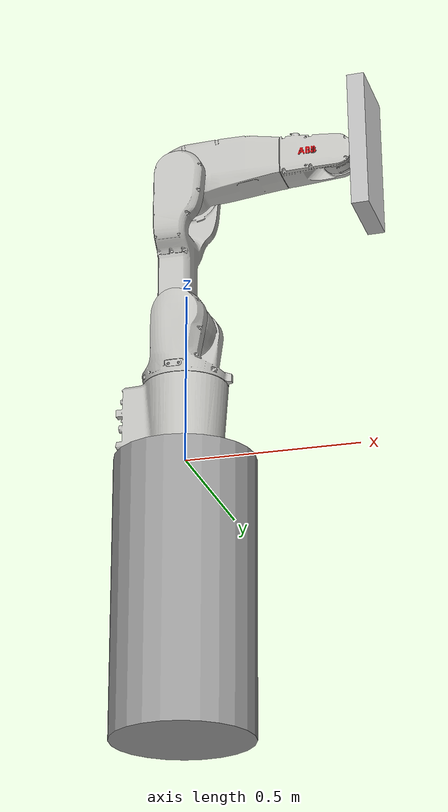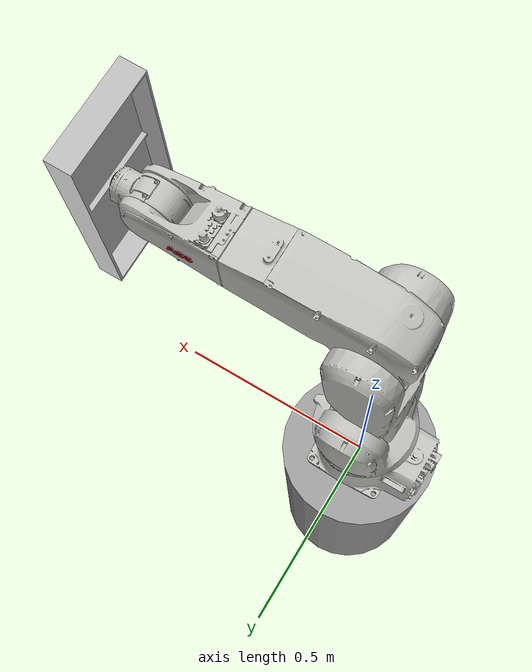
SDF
<?xml version='1.0'?>
<sdf version='1.6'>
  <model name='abb'>
    <link name='base_link'>
      <pose frame=''>0 0 0 0 -0 0</pose>
      <inertial>
        <pose frame=''>-0.028986 0.000596 0.11273 0 -0 0</pose>
        <mass>13.7742</mass>
        <inertia>
          <ixx>0.101998</ixx>
          <ixy>0.000495482</ixy>
          <ixz>0.000311158</ixz>
          <iyy>0.13969</iyy>
          <iyz>-0.000245375</iyz>
          <izz>0.130433</izz>
        </inertia>
      </inertial>
      <gravity>0</gravity>
      <velocity_decay/>
      <self_collide>0</self_collide>
      <enable_wind>0</enable_wind>
      <kinematic>0</kinematic>
      <visual name='base_link_fixed_joint_lump__visual_visual'>
        <pose frame=''>0 0 0 0 -0 0</pose>
        <geometry>
          <mesh>
            <scale>1 1 1</scale>
            <uri>model://abb/meshes/visual/base_link.dae</uri>
          </mesh>
        </geometry>
        <transparency>0</transparency>
        <cast_shadows>1</cast_shadows>
        <material>
          <emissive>0 0 0 1</emissive>
        </material>
      </visual>
    </link>
    <link name='link_0'>
      <inertial>
        <mass>1</mass>
        <inertia>
          <ixx>0.145833</ixx>
          <ixy>0</ixy>
          <ixz>0</ixz>
          <iyy>0.145833</iyy>
          <iyz>0</iyz>
          <izz>0.125</izz>
        </inertia>
        <pose frame=''>0 0 0 0 -0 0</pose>
      </inertial>
      <pose frame=''>-0 0 -0.4 0 -0 0</pose>
      <gravity>1</gravity>
      <self_collide>0</self_collide>
      <kinematic>0</kinematic>
      <enable_wind>0</enable_wind>
      <visual name='visual'>
        <pose frame=''>0 0 0 0 -0 0</pose>
        <geometry>
          <cylinder>
            <radius>0.2</radius>
            <length>0.8</length>
          </cylinder>
        </geometry>
        <material>
          <lighting>1</lighting>
          <script>
            <uri>file://media/materials/scripts/gazebo.material</uri>
            <name>Gazebo/Grey</name>
          </script>
          <shader type='vertex'>
            <normal_map>__default__</normal_map>
          </shader>
          <ambient>0.3 0.3 0.3 1</ambient>
          <diffuse>0.7 0.7 0.7 1</diffuse>
          <specular>0.01 0.01 0.01 1</specular>
          <emissive>0 0 0 1</emissive>
        </material>
        <transparency>0</transparency>
        <cast_shadows>1</cast_shadows>
      </visual>
    </link>
    <link name='link_1'>
      <pose frame=''>0 -0 0.3991 0 -0 0</pose>
      <inertial>
        <pose frame=''>0.000877 -0.000631 -0.062883 0 -0 0</pose>
        <mass>11.8419</mass>
        <inertia>
          <ixx>0.11194</ixx>
          <ixy>-4.54988e-05</ixy>
          <ixz>0.000280961</ixz>
          <iyy>0.0915159</iyy>
          <iyz>-0.000109905</iyz>
          <izz>0.0876456</izz>
        </inertia>
      </inertial>
      <gravity>0</gravity>
      <velocity_decay/>
      <self_collide>0</self_collide>
      <enable_wind>0</enable_wind>
      <kinematic>0</kinematic>
      <visual name='link_1_fixed_joint_lump__visual_visual'>
        <pose frame=''>0 0 0 0 -0 0</pose>
        <geometry>
          <mesh>
            <scale>1 1 1</scale>
            <uri>model://abb/meshes/visual/link_1.dae</uri>
          </mesh>
        </geometry>
        <transparency>0</transparency>
        <cast_shadows>1</cast_shadows>
      </visual>
    </link>
    <link name='link_2'>
      <pose frame=''>0 -0 0.3991 0 -0 0</pose>
      <inertial>
        <pose frame=''>-0.000928 -0.000497 0.250051 0 -0 0</pose>
        <mass>17.5394</mass>
        <inertia>
          <ixx>0.493558</ixx>
          <ixy>1.32136e-05</ixy>
          <ixz>0.000209024</ixz>
          <iyy>0.462939</iyy>
          <iyz>-0.00179901</iyz>
          <izz>0.0894214</izz>
        </inertia>
      </inertial>
      <gravity>0</gravity>
      <velocity_decay/>
      <self_collide>0</self_collide>
      <enable_wind>0</enable_wind>
      <kinematic>0</kinematic>
      <visual name='link_2_fixed_joint_lump__visual_visual'>
        <pose frame=''>0 0 0 0 -0 0</pose>
        <geometry>
          <mesh>
            <scale>1 1 1</scale>
            <uri>model://abb/meshes/visual/link_2.dae</uri>
          </mesh>
        </geometry>
        <transparency>0</transparency>
        <cast_shadows>1</cast_shadows>
      </visual>
    </link>
    <link name='link_3'>
      <pose frame=''>0 -0 0.8471 0 -0 0</pose>
      <inertial>
        <pose frame=''>0.099588 0.001143 0.032333 0 -0 0</pose>
        <mass>7.46365</mass>
        <inertia>
          <ixx>0.0252424</ixx>
          <ixy>0.000142737</ixy>
          <ixz>-0.00565542</ixz>
          <iyy>0.0906438</iyy>
          <iyz>0.000142213</iyz>
          <izz>0.0825079</izz>
        </inertia>
      </inertial>
      <gravity>0</gravity>
      <velocity_decay/>
      <self_collide>0</self_collide>
      <enable_wind>0</enable_wind>
      <kinematic>0</kinematic>
      <visual name='link_3_fixed_joint_lump__visual_visual'>
        <pose frame=''>0 0 0 0 -0 0</pose>
        <geometry>
          <mesh>
            <scale>1 1 1</scale>
            <uri>model://abb/meshes/visual/link_3.dae</uri>
          </mesh>
        </geometry>
        <transparency>0</transparency>
        <cast_shadows>1</cast_shadows>
      </visual>
    </link>
    <link name='link_4'>
      <pose frame=''>0 -0 0.8891 0 -0 0</pose>
      <inertial>
        <pose frame=''>0.381678 0.001261 0.005168 0 -0 0</pose>
        <mass>2.74436</mass>
        <inertia>
          <ixx>0.00573099</ixx>
          <ixy>-0.000131119</ixy>
          <ixz>0.000380232</ixz>
          <iyy>0.0118352</iyy>
          <iyz>-2.26565e-05</iyz>
          <izz>0.0114428</izz>
        </inertia>
      </inertial>
      <gravity>0</gravity>
      <velocity_decay/>
      <self_collide>0</self_collide>
      <enable_wind>0</enable_wind>
      <kinematic>0</kinematic>
      <visual name='link_4_fixed_joint_lump__visual_visual'>
        <pose frame=''>0 0 0 0 -0 0</pose>
        <geometry>
          <mesh>
            <scale>1 1 1</scale>
            <uri>model://abb/meshes/visual/link_4.dae</uri>
          </mesh>
        </geometry>
        <transparency>0</transparency>
        <cast_shadows>1</cast_shadows>
      </visual>
    </link>
    <link name='link_5'>
      <pose frame=''>0.451 -0 0.8891 0 -0 0</pose>
      <inertial>
        <pose frame=''>0.011197 -0.001056 0.000109 0 -0 0</pose>
        <mass>0.62953</mass>
        <inertia>
          <ixx>0.000502815</ixx>
          <ixy>-1.03173e-05</ixy>
          <ixz>-8.74347e-08</ixz>
          <iyy>0.00108856</iyy>
          <iyz>2.07657e-07</iyz>
          <izz>0.000918873</izz>
        </inertia>
      </inertial>
      <gravity>0</gravity>
      <velocity_decay/>
      <self_collide>0</self_collide>
      <enable_wind>0</enable_wind>
      <kinematic>0</kinematic>
      <visual name='link_5_fixed_joint_lump__visual_visual'>
        <pose frame=''>0 0 0 0 -0 0</pose>
        <geometry>
          <mesh>
            <scale>1 1 1</scale>
            <uri>model://abb/meshes/visual/link_5.dae</uri>
          </mesh>
        </geometry>
        <transparency>0</transparency>
        <cast_shadows>1</cast_shadows>
      </visual>
    </link>
    <link name='link_6'>
      <pose frame=''>0.533 -0 0.8891 0 -0 0</pose>
      <inertial>
        <pose frame=''>-0.00706 -0.00017 -1e-06 0 -0 0</pose>
        <mass>0.137</mass>
        <inertia>
          <ixx>0.001</ixx>
          <ixy>0</ixy>
          <ixz>0</ixz>
          <iyy>0.001</iyy>
          <iyz>0</iyz>
          <izz>0.001</izz>
        </inertia>
      </inertial>
      <gravity>0</gravity>
      <velocity_decay/>
      <self_collide>0</self_collide>
      <enable_wind>0</enable_wind>
      <kinematic>0</kinematic>
      <visual name='link_6_fixed_joint_lump__visual_visual'>
        <pose frame=''>0 0 0 0 -0 0</pose>
        <geometry>
          <mesh>
            <scale>1 1 1</scale>
            <uri>model://abb/meshes/visual/link_6.dae</uri>
          </mesh>
        </geometry>
        <transparency>0</transparency>
        <cast_shadows>1</cast_shadows>
        <material>
          <emissive>0 0 0 1</emissive>
        </material>
      </visual>
    </link>
    <model name='gripper'>
      <link name='body'>
        <self_collide>0</self_collide>
        <enable_wind>0</enable_wind>
        <kinematic>0</kinematic>
        <pose>0 0 0 0 -0 0</pose>
        <gravity>1</gravity>
        <inertial>
          <mass>0.05</mass>
          <pose>0 0 0 0 -0 0</pose>
          <inertia>
            <ixx>1</ixx>
            <ixy>0</ixy>
            <ixz>0</ixz>
            <iyy>1</iyy>
            <iyz>0</iyz>
            <izz>1</izz>
          </inertia>
        </inertial>
        <visual name='visual'>
          <geometry>
            <mesh>
              <uri>model://gripper/model.dae</uri>
              <scale>1 1 1</scale>
            </mesh>
          </geometry>
          <material>
            <script>
              <uri>__default__</uri>
              <name>__default__</name>
            </script>
          </material>
          <pose>0 0 0 0 -0 0</pose>
          <transparency>0</transparency>
          <cast_shadows>1</cast_shadows>
        </visual>

        <collision name="contact_sensor_collision">
          <pose>0 0 -0.05 0 0 0</pose>
          <geometry>
            <cylinder>
              <radius>0.01</radius>
              <length>0.10</length>
            </cylinder>
          </geometry>
          <surface>
            <contact>
              <collide_without_contact>true</collide_without_contact>
            </contact>
          </surface>
        </collision>

        <sensor name="logical_camera" type="logical_camera">
          <pose>0. 0 0 0 1.57 3.14159</pose>
          <logical_camera>
            <near>0.01</near>
            <far>0.115</far>
            <aspect_ratio>1</aspect_ratio>
            <horizontal_fov>1</horizontal_fov>
          </logical_camera>
          <always_on>1</always_on>
          <update_rate>100</update_rate>
          <visualize>false</visualize>
        </sensor>
        <sensor name="contact_sensor" type="contact">
          <contact>
          <collision>contact_sensor_collision</collision>
          </contact>
          <always_on>true</always_on>
        </sensor>
      </link>
      <static>0</static>
      <allow_auto_disable>1</allow_auto_disable>
      <pose frame=''>0.535744 0.003373 0.889074 3.14159 -1.55191 -3.14159</pose>
    </model>

    <joint name='joint_1' type='revolute'>
      <parent>base_link</parent>
      <child>link_1</child>
      <pose frame=''>0 0 0 0 -0 0</pose>
      <axis>
        <xyz>0 0 1</xyz>
        <use_parent_model_frame>1</use_parent_model_frame>
        <limit>
          <lower>-2.967</lower>
          <upper>2.967</upper>
          <effort>1000</effort>
          <velocity>5.027</velocity>
        </limit>
        <dynamics>
          <spring_reference>0</spring_reference>
          <spring_stiffness>0</spring_stiffness>
          <damping>50</damping>
          <friction>1</friction>
        </dynamics>
      </axis>
      <physics>
        <ode>
          <limit>
            <cfm>0</cfm>
            <erp>0.2</erp>
          </limit>
          <suspension>
            <cfm>0</cfm>
            <erp>0.2</erp>
          </suspension>
        </ode>
      </physics>
    </joint>
    <joint name='joint_2' type='revolute'>
      <parent>link_1</parent>
      <child>link_2</child>
      <pose frame=''>0 0 0 0 -0 0</pose>
      <axis>
        <xyz>0 1 0</xyz>
        <use_parent_model_frame>1</use_parent_model_frame>
        <limit>
          <lower>-1.745</lower>
          <upper>2.269</upper>
          <effort>1000</effort>
          <velocity>4.189</velocity>
        </limit>
        <dynamics>
          <spring_reference>0</spring_reference>
          <spring_stiffness>0</spring_stiffness>
          <damping>50</damping>
          <friction>1</friction>
        </dynamics>
      </axis>
      <physics>
        <ode>
          <limit>
            <cfm>0</cfm>
            <erp>0.2</erp>
          </limit>
          <suspension>
            <cfm>0</cfm>
            <erp>0.2</erp>
          </suspension>
        </ode>
      </physics>
    </joint>
    <joint name='joint_3' type='revolute'>
      <parent>link_2</parent>
      <child>link_3</child>
      <pose frame=''>0 0 0 0 -0 0</pose>
      <axis>
        <xyz>0 1 0</xyz>
        <use_parent_model_frame>1</use_parent_model_frame>
        <limit>
          <lower>-3.491</lower>
          <upper>1.222</upper>
          <effort>1000</effort>
          <velocity>5.236</velocity>
        </limit>
        <dynamics>
          <spring_reference>0</spring_reference>
          <spring_stiffness>0</spring_stiffness>
          <damping>10</damping>
          <friction>1</friction>
        </dynamics>
      </axis>
      <physics>
        <ode>
          <limit>
            <cfm>0</cfm>
            <erp>0.2</erp>
          </limit>
          <suspension>
            <cfm>0</cfm>
            <erp>0.2</erp>
          </suspension>
        </ode>
      </physics>
    </joint>
    <joint name='joint_4' type='revolute'>
      <parent>link_3</parent>
      <child>link_4</child>
      <pose frame=''>0 0 0 0 -0 0</pose>
      <axis>
        <xyz>1 0 0</xyz>
        <use_parent_model_frame>1</use_parent_model_frame>
        <limit>
          <lower>-4.712</lower>
          <upper>4.712</upper>
          <effort>1000</effort>
          <velocity>6.981</velocity>
        </limit>
        <dynamics>
          <spring_reference>0</spring_reference>
          <spring_stiffness>0</spring_stiffness>
          <damping>5</damping>
          <friction>1</friction>
        </dynamics>
      </axis>
      <physics>
        <ode>
          <limit>
            <cfm>0</cfm>
            <erp>0.2</erp>
          </limit>
          <suspension>
            <cfm>0</cfm>
            <erp>0.2</erp>
          </suspension>
        </ode>
      </physics>
    </joint>
    <joint name='joint_5' type='revolute'>
      <parent>link_4</parent>
      <child>link_5</child>
      <pose frame=''>0 0 0 0 -0 0</pose>
      <axis>
        <xyz>0 1 0</xyz>
        <use_parent_model_frame>1</use_parent_model_frame>
        <limit>
          <lower>-2.269</lower>
          <upper>2.269</upper>
          <effort>1000</effort>
          <velocity>7.069</velocity>
        </limit>
        <dynamics>
          <spring_reference>0</spring_reference>
          <spring_stiffness>0</spring_stiffness>
          <damping>2</damping>
          <friction>1</friction>
        </dynamics>
      </axis>
      <physics>
        <ode>
          <limit>
            <cfm>0</cfm>
            <erp>0.2</erp>
          </limit>
          <suspension>
            <cfm>0</cfm>
            <erp>0.2</erp>
          </suspension>
        </ode>
      </physics>
    </joint>
    <joint name='joint_6' type='revolute'>
      <parent>link_5</parent>
      <child>link_6</child>
      <pose frame=''>0 0 0 0 -0 0</pose>
      <axis>
        <xyz>1 0 0</xyz>
        <use_parent_model_frame>1</use_parent_model_frame>
        <limit>
          <lower>-6.283</lower>
          <upper>6.283</upper>
          <effort>1000</effort>
          <velocity>10.472</velocity>
        </limit>
        <dynamics>
          <spring_reference>0</spring_reference>
          <spring_stiffness>0</spring_stiffness>
          <damping>1</damping>
          <friction>1</friction>
        </dynamics>
      </axis>
      <physics>
        <ode>
          <limit>
            <cfm>0</cfm>
            <erp>0.2</erp>
          </limit>
          <suspension>
            <cfm>0</cfm>
            <erp>0.2</erp>
          </suspension>
        </ode>
      </physics>
    </joint>
    <joint name='link_0_JOINT_0' type='fixed'>
      <parent>link_0</parent>
      <child>base_link</child>
      <pose frame=''>0 0 0 0 -0 0</pose>
      <physics>
        <ode>
          <limit>
            <cfm>0</cfm>
            <erp>0.2</erp>
          </limit>
          <suspension>
            <cfm>0</cfm>
            <erp>0.2</erp>
          </suspension>
        </ode>
      </physics>
    </joint>
    <joint name='link_6_JOINT_0' type='fixed'>
      <parent>link_6</parent>
      <child>gripper::body</child>
      <pose frame=''>0 0 0 0 -0 0</pose>
      <physics>
        <ode>
          <limit>
            <cfm>0</cfm>
            <erp>0.2</erp>
          </limit>
          <suspension>
            <cfm>0</cfm>
            <erp>0.2</erp>
          </suspension>
        </ode>
      </physics>
    </joint>
    <joint name='fix to ground' type='fixed'>
      <parent>world</parent>
      <child>base_link</child>
    </joint>
    <static>0</static>
    <allow_auto_disable>1</allow_auto_disable>

    <gazebo_robotraconteur_server_plugin_model>
      <kinematic_joint_controller>
        <joint name="joint_1">
          <initial_position>0</initial_position>
        </joint>
        <joint name="joint_2">
          <initial_position>0.174532</initial_position>
        </joint>
        <joint name="joint_3">
          <initial_position>0.523598</initial_position>
        </joint>
        <joint name="joint_4">
          <initial_position>0</initial_position>
        </joint>
        <joint name="joint_5">
          <initial_position>0.872664</initial_position>
        </joint>
        <joint name="joint_6">
          <initial_position>0</initial_position>
        </joint>
      </kinematic_joint_controller>
    </gazebo_robotraconteur_server_plugin_model>
  </model>
</sdf>
